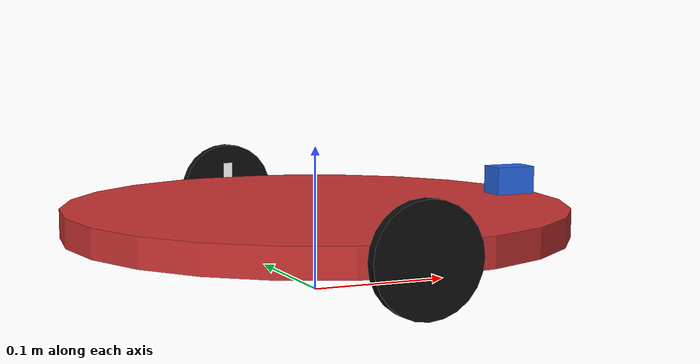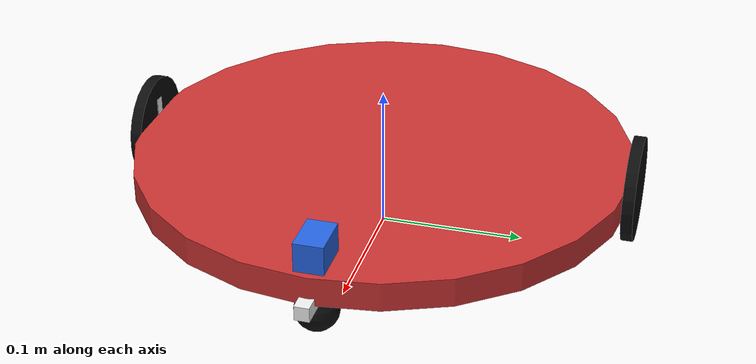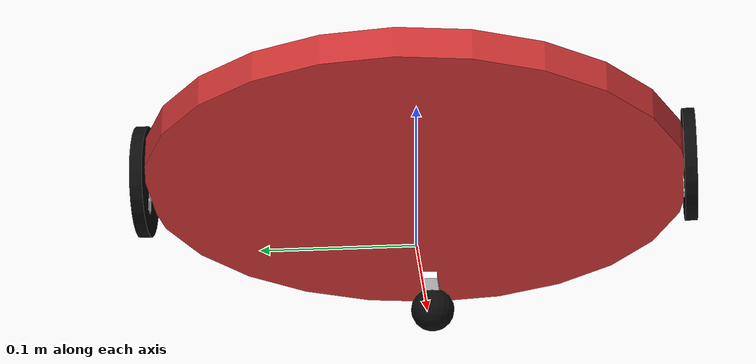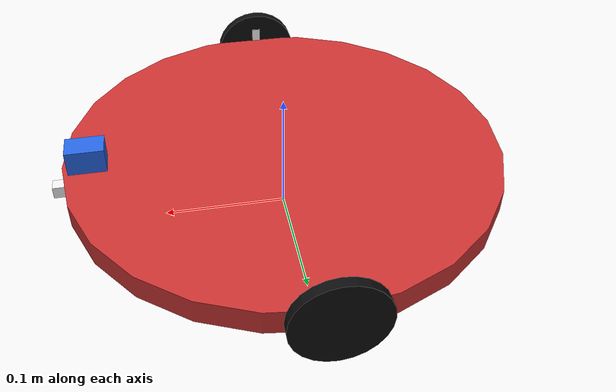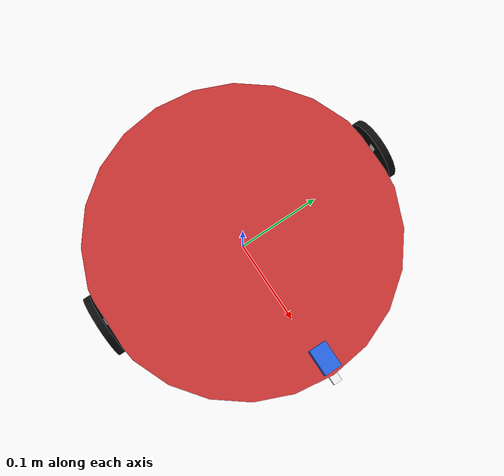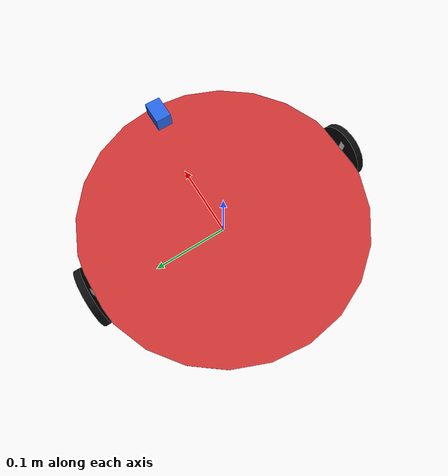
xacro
<?xml version="1.0"?>
<robot xmlns:xacro="http://www.ros.org/wiki/xacro" name="my_robot">

  <!-- ========================== Properties ========================== -->
  <xacro:property name="wheel_d" value="0.072" />
  <xacro:property name="wheel_r" value="${wheel_d/2.0}" />
  <xacro:property name="wheel_w" value="0.008" />
  <xacro:property name="base_radius" value="0.175" />
  <xacro:property name="base_thickness" value="0.02" />
  <xacro:property name="base_z_offset" value="0.05" />
  <xacro:property name="head_x" value="0.03" />
  <xacro:property name="head_y" value="0.02" />
  <xacro:property name="head_z" value="0.02" />
  <xacro:property name="passive_holder_len" value="0.06" />
  <xacro:property name="passive_wheel_r" value="0.015" />
  <xacro:property name="passive_wheel_w" value="0.01" />

  <!-- Mass properties -->
  <xacro:property name="mass_head" value="0.02" />
  <xacro:property name="mass_base" value="0.1" />
  <xacro:property name="mass_back_wheel" value="0.025" />
  <xacro:property name="mass_passive_holder" value="0.015" />
  <xacro:property name="mass_passive_wheel" value="0.01" />

  <material name="wheel_black">
    <color rgba="0.05 0.05 0.05 1.0" />
  </material>

  <!-- ========================== Links ========================== -->
  <link name="base_footprint" />

  <link name="base_link">
    <visual>
      <geometry>
        <cylinder radius="${base_radius}" length="${base_thickness}" />
      </geometry>
      <material name="base_red">
        <color rgba="0.8 0.2 0.2 1.0" />
      </material>
    </visual>
    <collision>
      <geometry>
        <cylinder radius="${base_radius}" length="${base_thickness}" />
      </geometry>
    </collision>
    <inertial>
      <mass value="${mass_base}" />
      <inertia ixx="0.001" iyy="0.001" izz="0.001" ixy="0" ixz="0" iyz="0" />
    </inertial>
  </link>

  <link name="head_link">
    <visual>
      <geometry>
        <box size="${head_x} ${head_y} ${head_z}" />
      </geometry>
      <material name="head_blue">
        <color rgba="0.15 0.4 0.9 1.0" />
      </material>
    </visual>
    <collision>
      <geometry>
        <box size="${head_x} ${head_y} ${head_z}" />
      </geometry>
    </collision>
    <inertial>
      <mass value="${mass_head}" />
      <inertia ixx="0.00001" iyy="0.00001" izz="0.00001" ixy="0" ixz="0" iyz="0" />
    </inertial>
  </link>

  <!-- Back wheels -->
  <link name="left_wheel">
    <visual>
      <geometry>
        <cylinder radius="${wheel_r}" length="${wheel_w}" />
      </geometry>
      <material name="wheel_black" />
    </visual>
    <collision>
      <geometry>
        <cylinder radius="${wheel_r}" length="${wheel_w}" />
      </geometry>
    </collision>
    <inertial>
      <mass value="${mass_back_wheel}" />
      <inertia ixx="0.00001" iyy="0.00001" izz="0.00001" ixy="0" ixz="0" iyz="0" />
    </inertial>

    <gazebo>
      <mu1>1.0</mu1>
      <mu2>1.0</mu2>
      <kp>100000</kp>
      <kd>1</kd>
      <turningSlip>0.1</turningSlip>
    </gazebo>
  </link>

  <link name="right_wheel">
    <visual>
      <geometry>
        <cylinder radius="${wheel_r}" length="${wheel_w}" />
      </geometry>
      <material name="wheel_black" />
    </visual>
    <collision>
      <geometry>
        <cylinder radius="${wheel_r}" length="${wheel_w}" />
      </geometry>
    </collision>
    <inertial>
      <mass value="${mass_back_wheel}" />
      <inertia ixx="0.00001" iyy="0.00001" izz="0.00001" ixy="0" ixz="0" iyz="0" />
    </inertial>

    <gazebo>
      <mu1>1.0</mu1>
      <mu2>1.0</mu2>
      <kp>100000</kp>
      <kd>1</kd>
      <turningSlip>0.1</turningSlip>
    </gazebo>
  </link>

  <!-- Rotation markers -->
  <link name="left_wheel_marker">
    <visual>
      <geometry>
        <box size="${wheel_r*0.2} ${wheel_w*0.1} ${wheel_r*1.2}" />
      </geometry>
      <material name="marker_white">
        <color rgba="1 1 1 1" />
      </material>
    </visual>
    <collision>
      <geometry>
        <box size="${wheel_r*0.2} ${wheel_w*0.1} ${wheel_r*1.2}" />
      </geometry>
    </collision>
  </link>

  <link name="right_wheel_marker">
    <visual>
      <geometry>
        <box size="${wheel_r*0.2} ${wheel_w*0.1} ${wheel_r*1.2}" />
      </geometry>
      <material name="marker_white">
        <color rgba="1 1 1 1" />
      </material>
    </visual>
    <collision>
      <geometry>
        <box size="${wheel_r*0.2} ${wheel_w*0.1} ${wheel_r*1.2}" />
      </geometry>
    </collision>
  </link>

  <link name="passive_wheel_holder">
    <visual>
      <geometry>
        <box size="${passive_holder_len} ${passive_wheel_w} ${passive_wheel_w}" />
      </geometry>
      <material name="white">
        <color rgba="0.95 0.95 0.95 1.0" />
      </material>
    </visual>
    <collision>
      <geometry>
        <box size="${passive_holder_len} ${passive_wheel_w} ${passive_wheel_w}" />
      </geometry>
    </collision>
    <inertial>
      <mass value="${mass_passive_holder}" />
      <inertia ixx="0.000005" iyy="0.000005" izz="0.000005" ixy="0" ixz="0" iyz="0" />
    </inertial>
  </link>

  <link name="passive_wheel">
    <visual>
      <geometry>
        <sphere radius="${passive_wheel_r}" />
      </geometry>
      <material name="wheel_black" />
    </visual>
    <collision>
      <geometry>
        <sphere radius="${passive_wheel_r}" />
      </geometry>
    </collision>
    <inertial>
      <mass value="${mass_passive_wheel}" />
      <inertia ixx="0.000002" iyy="0.000002" izz="0.000002" ixy="0" ixz="0" iyz="0" />
    </inertial>

    <gazebo>
      <mu1>0.0</mu1>
      <mu2>0.0</mu2>
      <kp>100000</kp>
      <kd>1</kd>
      <turningSlip>0.0</turningSlip>
    </gazebo>
  </link>

  <!-- ========================== Joints ========================== -->
  <joint name="footprint_to_base" type="fixed">
    <parent link="base_footprint" />
    <child link="base_link" />
    <origin xyz="0 0 ${base_z_offset}" rpy="0 0 0" />
  </joint>

  <joint name="base_to_head" type="fixed">
    <parent link="base_link" />
    <child link="head_link" />
    <origin xyz="${base_radius - 0.02} 0 ${base_thickness/2.0 + head_z/2.0}" rpy="0 0 0" />
  </joint>

  <joint name="base_to_left_wheel" type="continuous">
    <parent link="base_link" />
    <child link="left_wheel" />
    <origin xyz="${-wheel_w/2} ${base_radius + 0.001} 0" rpy="${-pi/2} ${pi/2} 0" />
    <axis xyz="0 0 1" />
  </joint>

  <joint name="base_to_right_wheel" type="continuous">
    <parent link="base_link" />
    <child link="right_wheel" />
    <origin xyz="${-wheel_w/2} ${-base_radius} 0" rpy="${-pi/2} ${pi/2} 0" />
    <axis xyz="0 0 1" />
  </joint>

  <joint name="left_wheel_marker_fixed" type="fixed">
    <parent link="left_wheel" />
    <child link="left_wheel_marker" />
    <origin xyz="0 0 ${-wheel_w / 2}" rpy="${pi/2} 0 ${pi/2}" />
  </joint>

  <joint name="right_wheel_marker_fixed" type="fixed">
    <parent link="right_wheel" />
    <child link="right_wheel_marker" />
    <origin xyz="0 0 ${wheel_w / 2}" rpy="${pi/2} 0 ${pi/2}" />
  </joint>

  <joint name="base_to_passive_holder" type="fixed">
    <parent link="base_link" />
    <child link="passive_wheel_holder" />
    <origin xyz="${base_radius - 0.02} 0 ${-base_thickness/2.0}" rpy="0 0 0" />
  </joint>

  <joint name="holder_to_passive_wheel" type="fixed">
    <parent link="passive_wheel_holder" />
    <child link="passive_wheel" />
    <origin xyz="0 0 ${-passive_wheel_r}" rpy="0 0 0" />
    <axis xyz="0 0 1" />
  </joint>

  <gazebo>
    <plugin name="diff_drive" filename="libgazebo_ros_diff_drive.so">
      <ros>
        <remapping>odom:=diff_cont/odom</remapping>
      </ros>

      <update_rate>50</update_rate>

      <left_joint>base_to_left_wheel</left_joint>
      <right_joint>base_to_right_wheel</right_joint>

      <wheel_separation>0.35</wheel_separation>
      <wheel_radius>0.036</wheel_radius>
      <wheel_diameter>0.072</wheel_diameter>

      <command_topic>cmd_vel</command_topic>

      <odometry_topic>odom</odometry_topic>
      <odometry_frame>odom</odometry_frame>

      <robot_base_frame>base_footprint</robot_base_frame>

      <publish_odom>true</publish_odom>
      <publish_odom_tf>true</publish_odom_tf>
      <publish_joint_state>true</publish_joint_state>
      <publish_tf>true</publish_tf>
      <publish_wheel_tf>true</publish_wheel_tf>
    </plugin>

    <plugin name="p3d_base_controller" filename="libgazebo_ros_p3d.so">
      <ros>
        <remapping>odom:=ground_truth</remapping>
      </ros>
      <update_rate>50.0</update_rate>
      <body_name>base_footprint</body_name>
      <gaussian_noise>0.0</gaussian_noise>
      <frame_name>odom</frame_name>
      <xyz_offset>0 0 0</xyz_offset>
      <rpy_offset>0 0 0</rpy_offset>
    </plugin>

  </gazebo>

</robot>
